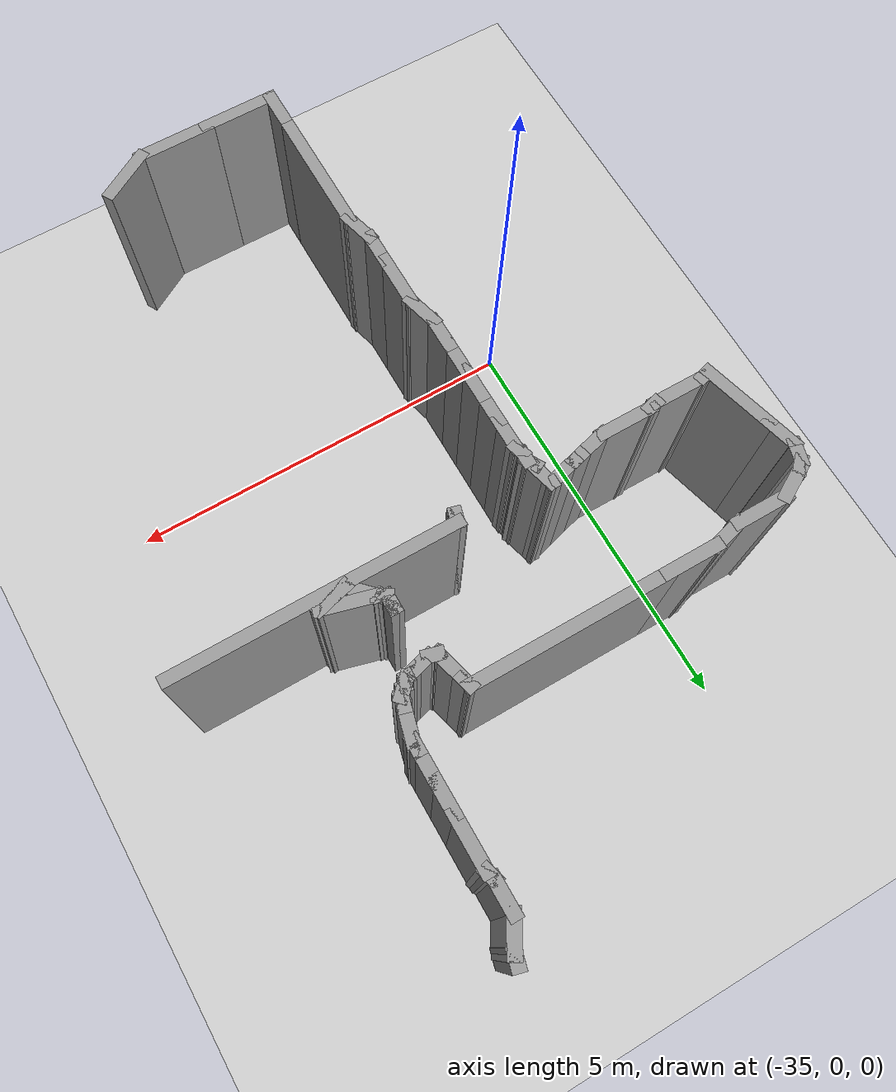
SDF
<sdf version="1.7">
 <world name="default">
  <model name="ground_plane">
   <static>1</static>
   <link name="link">
    <collision name="collision">
     <geometry><plane><normal>0 0 1</normal><size>100 100</size></plane></geometry>
     <surface>
      <contact><collide_bitmask>65535</collide_bitmask></contact>
      <friction><ode><mu>100</mu><mu2>50</mu2></ode></friction>
     </surface>
    </collision>
    <visual name="visual">
     <cast_shadows>0</cast_shadows>
     <geometry><plane><normal>0 0 1</normal><size>100 100</size></plane></geometry>
     <material>
      <script><uri>file://media/materials/scripts/gazebo.material</uri><name>Gazebo/Grey</name></script>
     </material>
    </visual>
   </link>
  </model>
  <model name="robovisor_env">
   <pose>-13 -0.201839 0 0 0 3.14</pose>
   <link name="Wall_190">
    <collision name="Wall_190_Collision">
     <geometry><box><size>0.75 0.15 2.5</size></box></geometry>
     <pose>0 0 1.25 0 -0 0</pose>
    </collision>
    <visual name="Wall_190_Visual">
     <pose>0 0 1.25 0 -0 0</pose>
     <geometry><box><size>0.75 0.15 2.5</size></box></geometry>
     <material>
      <script><uri>file://media/materials/scripts/gazebo.material</uri><name>Gazebo/Grey</name></script>
      <ambient>1 1 1 1</ambient>
     </material>
     <meta><layer>0</layer></meta>
    </visual>
    <pose>18.8171 3.00338 0 0 -0 0.523599</pose>
   </link>
   <link name="Wall_191">
    <collision name="Wall_191_Collision">
     <geometry><box><size>1 0.15 2.5</size></box></geometry>
     <pose>0 0 1.25 0 -0 0</pose>
    </collision>
    <visual name="Wall_191_Visual">
     <pose>0 0 1.25 0 -0 0</pose>
     <geometry><box><size>1 0.15 2.5</size></box></geometry>
     <material>
      <script><uri>file://media/materials/scripts/gazebo.material</uri><name>Gazebo/Grey</name></script>
      <ambient>1 1 1 1</ambient>
     </material>
     <meta><layer>0</layer></meta>
    </visual>
    <pose>19.5019 3.15338 0 0 -0 0</pose>
   </link>
   <link name="Wall_192">
    <collision name="Wall_192_Collision">
     <geometry><box><size>1 0.15 2.5</size></box></geometry>
     <pose>0 0 1.25 0 -0 0</pose>
    </collision>
    <visual name="Wall_192_Visual">
     <pose>0 0 1.25 0 -0 0</pose>
     <geometry><box><size>1 0.15 2.5</size></box></geometry>
     <material>
      <script><uri>file://media/materials/scripts/gazebo.material</uri><name>Gazebo/Grey</name></script>
      <ambient>1 1 1 1</ambient>
     </material>
     <meta><layer>0</layer></meta>
    </visual>
    <pose>20.3519 3.15338 0 0 -0 0</pose>
   </link>
   <link name="Wall_193">
    <collision name="Wall_193_Collision">
     <geometry><box><size>0.5 0.15 2.5</size></box></geometry>
     <pose>0 0 1.25 0 -0 0</pose>
    </collision>
    <visual name="Wall_193_Visual">
     <pose>0 0 1.25 0 -0 0</pose>
     <geometry><box><size>0.5 0.15 2.5</size></box></geometry>
     <material>
      <script><uri>file://media/materials/scripts/gazebo.material</uri><name>Gazebo/Grey</name></script>
      <ambient>1 1 1 1</ambient>
     </material>
     <meta><layer>0</layer></meta>
    </visual>
    <pose>20.7769 2.97838 0 0 -0 -1.5708</pose>
   </link>
   <link name="Wall_194">
    <collision name="Wall_194_Collision">
     <geometry><box><size>1.75 0.15 2.5</size></box></geometry>
     <pose>0 0 1.25 0 -0 0</pose>
    </collision>
    <visual name="Wall_194_Visual">
     <pose>0 0 1.25 0 -0 0</pose>
     <geometry><box><size>1.75 0.15 2.5</size></box></geometry>
     <material>
      <script><uri>file://media/materials/scripts/gazebo.material</uri><name>Gazebo/Grey</name></script>
      <ambient>1 1 1 1</ambient>
     </material>
     <meta><layer>0</layer></meta>
    </visual>
    <pose>20.7769 2.00338 0 0 -0 -1.5708</pose>
   </link>
   <link name="Wall_195">
    <collision name="Wall_195_Collision">
     <geometry><box><size>0.5 0.15 2.5</size></box></geometry>
     <pose>0 0 1.25 0 -0 0</pose>
    </collision>
    <visual name="Wall_195_Visual">
     <pose>0 0 1.25 0 -0 0</pose>
     <geometry><box><size>0.5 0.15 2.5</size></box></geometry>
     <material>
      <script><uri>file://media/materials/scripts/gazebo.material</uri><name>Gazebo/Grey</name></script>
      <ambient>1 1 1 1</ambient>
     </material>
     <meta><layer>0</layer></meta>
    </visual>
    <pose>20.8222 1.03435 0 0 -0 -1.309</pose>
   </link>
   <link name="Wall_196">
    <collision name="Wall_196_Collision">
     <geometry><box><size>0.5 0.15 2.5</size></box></geometry>
     <pose>0 0 1.25 0 -0 0</pose>
    </collision>
    <visual name="Wall_196_Visual">
     <pose>0 0 1.25 0 -0 0</pose>
     <geometry><box><size>0.5 0.15 2.5</size></box></geometry>
     <material>
      <script><uri>file://media/materials/scripts/gazebo.material</uri><name>Gazebo/Grey</name></script>
      <ambient>1 1 1 1</ambient>
     </material>
     <meta><layer>0</layer></meta>
    </visual>
    <pose>20.8675 0.69031 0 0 -0 -1.5708</pose>
   </link>
   <link name="Wall_197">
    <collision name="Wall_197_Collision">
     <geometry><box><size>0.75 0.15 2.5</size></box></geometry>
     <pose>0 0 1.25 0 -0 0</pose>
    </collision>
    <visual name="Wall_197_Visual">
     <pose>0 0 1.25 0 -0 0</pose>
     <geometry><box><size>0.75 0.15 2.5</size></box></geometry>
     <material>
      <script><uri>file://media/materials/scripts/gazebo.material</uri><name>Gazebo/Grey</name></script>
      <ambient>1 1 1 1</ambient>
     </material>
     <meta><layer>0</layer></meta>
    </visual>
    <pose>20.8675 0.21531 0 0 -0 -1.5708</pose>
   </link>
   <link name="Wall_198">
    <collision name="Wall_198_Collision">
     <geometry><box><size>0.5 0.15 2.5</size></box></geometry>
     <pose>0 0 1.25 0 -0 0</pose>
    </collision>
    <visual name="Wall_198_Visual">
     <pose>0 0 1.25 0 -0 0</pose>
     <geometry><box><size>0.5 0.15 2.5</size></box></geometry>
     <material>
      <script><uri>file://media/materials/scripts/gazebo.material</uri><name>Gazebo/Grey</name></script>
      <ambient>1 1 1 1</ambient>
     </material>
     <meta><layer>0</layer></meta>
    </visual>
    <pose>20.9127 -0.253727 0 0 -0 -1.309</pose>
   </link>
   <link name="Wall_199">
    <collision name="Wall_199_Collision">
     <geometry><box><size>0.5 0.15 2.5</size></box></geometry>
     <pose>0 0 1.25 0 -0 0</pose>
    </collision>
    <visual name="Wall_199_Visual">
     <pose>0 0 1.25 0 -0 0</pose>
     <geometry><box><size>0.5 0.15 2.5</size></box></geometry>
     <material>
      <script><uri>file://media/materials/scripts/gazebo.material</uri><name>Gazebo/Grey</name></script>
      <ambient>1 1 1 1</ambient>
     </material>
     <meta><layer>0</layer></meta>
    </visual>
    <pose>20.958 -0.597764 0 0 -0 -1.5708</pose>
   </link>
   <link name="Wall_200">
    <collision name="Wall_200_Collision">
     <geometry><box><size>0.5 0.15 2.5</size></box></geometry>
     <pose>0 0 1.25 0 -0 0</pose>
    </collision>
    <visual name="Wall_200_Visual">
     <pose>0 0 1.25 0 -0 0</pose>
     <geometry><box><size>0.5 0.15 2.5</size></box></geometry>
     <material>
      <script><uri>file://media/materials/scripts/gazebo.material</uri><name>Gazebo/Grey</name></script>
      <ambient>1 1 1 1</ambient>
     </material>
     <meta><layer>0</layer></meta>
    </visual>
    <pose>20.958 -0.947764 0 0 -0 -1.5708</pose>
   </link>
   <link name="Wall_201">
    <collision name="Wall_201_Collision">
     <geometry><box><size>0.5 0.15 2.5</size></box></geometry>
     <pose>0 0 1.25 0 -0 0</pose>
    </collision>
    <visual name="Wall_201_Visual">
     <pose>0 0 1.25 0 -0 0</pose>
     <geometry><box><size>0.5 0.15 2.5</size></box></geometry>
     <material>
      <script><uri>file://media/materials/scripts/gazebo.material</uri><name>Gazebo/Grey</name></script>
      <ambient>1 1 1 1</ambient>
     </material>
     <meta><layer>0</layer></meta>
    </visual>
    <pose>20.958 -1.29776 0 0 -0 -1.5708</pose>
   </link>
   <link name="Wall_202">
    <collision name="Wall_202_Collision">
     <geometry><box><size>0.5 0.15 2.5</size></box></geometry>
     <pose>0 0 1.25 0 -0 0</pose>
    </collision>
    <visual name="Wall_202_Visual">
     <pose>0 0 1.25 0 -0 0</pose>
     <geometry><box><size>0.5 0.15 2.5</size></box></geometry>
     <material>
      <script><uri>file://media/materials/scripts/gazebo.material</uri><name>Gazebo/Grey</name></script>
      <ambient>1 1 1 1</ambient>
     </material>
     <meta><layer>0</layer></meta>
    </visual>
    <pose>20.958 -1.64776 0 0 -0 -1.5708</pose>
   </link>
   <link name="Wall_203">
    <collision name="Wall_203_Collision">
     <geometry><box><size>0.5 0.15 2.5</size></box></geometry>
     <pose>0 0 1.25 0 -0 0</pose>
    </collision>
    <visual name="Wall_203_Visual">
     <pose>0 0 1.25 0 -0 0</pose>
     <geometry><box><size>0.5 0.15 2.5</size></box></geometry>
     <material>
      <script><uri>file://media/materials/scripts/gazebo.material</uri><name>Gazebo/Grey</name></script>
      <ambient>1 1 1 1</ambient>
     </material>
     <meta><layer>0</layer></meta>
    </visual>
    <pose>20.958 -1.99776 0 0 -0 -1.5708</pose>
   </link>
   <link name="Wall_204">
    <collision name="Wall_204_Collision">
     <geometry><box><size>0.25 0.15 2.5</size></box></geometry>
     <pose>0 0 1.25 0 -0 0</pose>
    </collision>
    <visual name="Wall_204_Visual">
     <pose>0 0 1.25 0 -0 0</pose>
     <geometry><box><size>0.25 0.15 2.5</size></box></geometry>
     <material>
      <script><uri>file://media/materials/scripts/gazebo.material</uri><name>Gazebo/Grey</name></script>
      <ambient>1 1 1 1</ambient>
     </material>
     <meta><layer>0</layer></meta>
    </visual>
    <pose>20.971 -2.22106 0 0 -0 -1.309</pose>
   </link>
   <link name="Wall_205">
    <collision name="Wall_205_Collision">
     <geometry><box><size>0.25 0.15 2.5</size></box></geometry>
     <pose>0 0 1.25 0 -0 0</pose>
    </collision>
    <visual name="Wall_205_Visual">
     <pose>0 0 1.25 0 -0 0</pose>
     <geometry><box><size>0.25 0.15 2.5</size></box></geometry>
     <material>
      <script><uri>file://media/materials/scripts/gazebo.material</uri><name>Gazebo/Grey</name></script>
      <ambient>1 1 1 1</ambient>
     </material>
     <meta><layer>0</layer></meta>
    </visual>
    <pose>20.9839 -2.31936 0 0 -0 -1.5708</pose>
   </link>
   <link name="Wall_206">
    <collision name="Wall_206_Collision">
     <geometry><box><size>0.25 0.15 2.5</size></box></geometry>
     <pose>0 0 1.25 0 -0 0</pose>
    </collision>
    <visual name="Wall_206_Visual">
     <pose>0 0 1.25 0 -0 0</pose>
     <geometry><box><size>0.25 0.15 2.5</size></box></geometry>
     <material>
      <script><uri>file://media/materials/scripts/gazebo.material</uri><name>Gazebo/Grey</name></script>
      <ambient>1 1 1 1</ambient>
     </material>
     <meta><layer>0</layer></meta>
    </visual>
    <pose>21.0089 -2.41266 0 0 -0 -1.0472</pose>
   </link>
   <link name="Wall_207">
    <collision name="Wall_207_Collision">
     <geometry><box><size>0.25 0.15 2.5</size></box></geometry>
     <pose>0 0 1.25 0 -0 0</pose>
    </collision>
    <visual name="Wall_207_Visual">
     <pose>0 0 1.25 0 -0 0</pose>
     <geometry><box><size>0.25 0.15 2.5</size></box></geometry>
     <material>
      <script><uri>file://media/materials/scripts/gazebo.material</uri><name>Gazebo/Grey</name></script>
      <ambient>1 1 1 1</ambient>
     </material>
     <meta><layer>0</layer></meta>
    </visual>
    <pose>21.0089 -2.41266 0 0 -0 2.0944</pose>
   </link>
   <link name="Wall_208">
    <collision name="Wall_208_Collision">
     <geometry><box><size>0.5 0.15 2.5</size></box></geometry>
     <pose>0 0 1.25 0 -0 0</pose>
    </collision>
    <visual name="Wall_208_Visual">
     <pose>0 0 1.25 0 -0 0</pose>
     <geometry><box><size>0.5 0.15 2.5</size></box></geometry>
     <material>
      <script><uri>file://media/materials/scripts/gazebo.material</uri><name>Gazebo/Grey</name></script>
      <ambient>1 1 1 1</ambient>
     </material>
     <meta><layer>0</layer></meta>
    </visual>
    <pose>21.0292 -2.53839 0 0 -0 -1.309</pose>
   </link>
   <link name="Wall_209">
    <collision name="Wall_209_Collision">
     <geometry><box><size>0.15 0.15 2.5</size></box></geometry>
     <pose>0 0 1.25 0 -0 0</pose>
    </collision>
    <visual name="Wall_209_Visual">
     <pose>0 0 1.25 0 -0 0</pose>
     <geometry><box><size>0.15 0.15 2.5</size></box></geometry>
     <material>
      <script><uri>file://media/materials/scripts/gazebo.material</uri><name>Gazebo/Grey</name></script>
      <ambient>1 1 1 1</ambient>
     </material>
     <meta><layer>0</layer></meta>
    </visual>
    <pose>21.0745 -2.70743 0 0 -0 0</pose>
   </link>
   <link name="Wall_210">
    <collision name="Wall_210_Collision">
     <geometry><box><size>0.5 0.15 2.5</size></box></geometry>
     <pose>0 0 1.25 0 -0 0</pose>
    </collision>
    <visual name="Wall_210_Visual">
     <pose>0 0 1.25 0 -0 0</pose>
     <geometry><box><size>0.5 0.15 2.5</size></box></geometry>
     <material>
      <script><uri>file://media/materials/scripts/gazebo.material</uri><name>Gazebo/Grey</name></script>
      <ambient>1 1 1 1</ambient>
     </material>
     <meta><layer>0</layer></meta>
    </visual>
    <pose>21.2435 -2.66214 0 0 -0 0.261799</pose>
   </link>
   <link name="Wall_211">
    <collision name="Wall_211_Collision">
     <geometry><box><size>0.25 0.15 2.5</size></box></geometry>
     <pose>0 0 1.25 0 -0 0</pose>
    </collision>
    <visual name="Wall_211_Visual">
     <pose>0 0 1.25 0 -0 0</pose>
     <geometry><box><size>0.25 0.15 2.5</size></box></geometry>
     <material>
      <script><uri>file://media/materials/scripts/gazebo.material</uri><name>Gazebo/Grey</name></script>
      <ambient>1 1 1 1</ambient>
     </material>
     <meta><layer>0</layer></meta>
    </visual>
    <pose>21.4609 -2.6039 0 0 -0 0.261799</pose>
   </link>
   <link name="Wall_212">
    <collision name="Wall_212_Collision">
     <geometry><box><size>0.5 0.15 2.5</size></box></geometry>
     <pose>0 0 1.25 0 -0 0</pose>
    </collision>
    <visual name="Wall_212_Visual">
     <pose>0 0 1.25 0 -0 0</pose>
     <geometry><box><size>0.5 0.15 2.5</size></box></geometry>
     <material>
      <script><uri>file://media/materials/scripts/gazebo.material</uri><name>Gazebo/Grey</name></script>
      <ambient>1 1 1 1</ambient>
     </material>
     <meta><layer>0</layer></meta>
    </visual>
    <pose>21.6782 -2.54567 0 0 -0 0.261799</pose>
   </link>
   <link name="Wall_213">
    <collision name="Wall_213_Collision">
     <geometry><box><size>0.75 0.15 2.5</size></box></geometry>
     <pose>0 0 1.25 0 -0 0</pose>
    </collision>
    <visual name="Wall_213_Visual">
     <pose>0 0 1.25 0 -0 0</pose>
     <geometry><box><size>0.75 0.15 2.5</size></box></geometry>
     <material>
      <script><uri>file://media/materials/scripts/gazebo.material</uri><name>Gazebo/Grey</name></script>
      <ambient>1 1 1 1</ambient>
     </material>
     <meta><layer>0</layer></meta>
    </visual>
    <pose>22.1473 -2.50038 0 0 -0 0</pose>
   </link>
   <link name="Wall_214">
    <collision name="Wall_214_Collision">
     <geometry><box><size>0.25 0.15 2.5</size></box></geometry>
     <pose>0 0 1.25 0 -0 0</pose>
    </collision>
    <visual name="Wall_214_Visual">
     <pose>0 0 1.25 0 -0 0</pose>
     <geometry><box><size>0.25 0.15 2.5</size></box></geometry>
     <material>
      <script><uri>file://media/materials/scripts/gazebo.material</uri><name>Gazebo/Grey</name></script>
      <ambient>1 1 1 1</ambient>
     </material>
     <meta><layer>0</layer></meta>
    </visual>
    <pose>22.4956 -2.48743 0 0 -0 0.261799</pose>
   </link>
   <link name="Wall_215">
    <collision name="Wall_215_Collision">
     <geometry><box><size>0.75 0.15 2.5</size></box></geometry>
     <pose>0 0 1.25 0 -0 0</pose>
    </collision>
    <visual name="Wall_215_Visual">
     <pose>0 0 1.25 0 -0 0</pose>
     <geometry><box><size>0.75 0.15 2.5</size></box></geometry>
     <material>
      <script><uri>file://media/materials/scripts/gazebo.material</uri><name>Gazebo/Grey</name></script>
      <ambient>1 1 1 1</ambient>
     </material>
     <meta><layer>0</layer></meta>
    </visual>
    <pose>22.8438 -2.47449 0 0 -0 0</pose>
   </link>
   <link name="Wall_216">
    <collision name="Wall_216_Collision">
     <geometry><box><size>0.25 0.15 2.5</size></box></geometry>
     <pose>0 0 1.25 0 -0 0</pose>
    </collision>
    <visual name="Wall_216_Visual">
     <pose>0 0 1.25 0 -0 0</pose>
     <geometry><box><size>0.25 0.15 2.5</size></box></geometry>
     <material>
      <script><uri>file://media/materials/scripts/gazebo.material</uri><name>Gazebo/Grey</name></script>
      <ambient>1 1 1 1</ambient>
     </material>
     <meta><layer>0</layer></meta>
    </visual>
    <pose>23.1921 -2.46155 0 0 -0 0.261799</pose>
   </link>
   <link name="Wall_217">
    <collision name="Wall_217_Collision">
     <geometry><box><size>1 0.15 2.5</size></box></geometry>
     <pose>0 0 1.25 0 -0 0</pose>
    </collision>
    <visual name="Wall_217_Visual">
     <pose>0 0 1.25 0 -0 0</pose>
     <geometry><box><size>1 0.15 2.5</size></box></geometry>
     <material>
      <script><uri>file://media/materials/scripts/gazebo.material</uri><name>Gazebo/Grey</name></script>
      <ambient>1 1 1 1</ambient>
     </material>
     <meta><layer>0</layer></meta>
    </visual>
    <pose>23.3504 -2.85913 0 0 -0 -1.309</pose>
   </link>
   <link name="Wall_218">
    <collision name="Wall_218_Collision">
     <geometry><box><size>0.5 0.15 2.5</size></box></geometry>
     <pose>0 0 1.25 0 -0 0</pose>
    </collision>
    <visual name="Wall_218_Visual">
     <pose>0 0 1.25 0 -0 0</pose>
     <geometry><box><size>0.5 0.15 2.5</size></box></geometry>
     <material>
      <script><uri>file://media/materials/scripts/gazebo.material</uri><name>Gazebo/Grey</name></script>
      <ambient>1 1 1 1</ambient>
     </material>
     <meta><layer>0</layer></meta>
    </visual>
    <pose>23.5057 -3.43868 0 0 -0 -1.309</pose>
   </link>
   <link name="Wall_219">
    <collision name="Wall_219_Collision">
     <geometry><box><size>0.25 0.15 2.5</size></box></geometry>
     <pose>0 0 1.25 0 -0 0</pose>
    </collision>
    <visual name="Wall_219_Visual">
     <pose>0 0 1.25 0 -0 0</pose>
     <geometry><box><size>0.25 0.15 2.5</size></box></geometry>
     <material>
      <script><uri>file://media/materials/scripts/gazebo.material</uri><name>Gazebo/Grey</name></script>
      <ambient>1 1 1 1</ambient>
     </material>
     <meta><layer>0</layer></meta>
    </visual>
    <pose>23.5381 -3.65602 0 0 -0 -1.8326</pose>
   </link>
   <link name="Wall_220">
    <collision name="Wall_220_Collision">
     <geometry><box><size>0.25 0.15 2.5</size></box></geometry>
     <pose>0 0 1.25 0 -0 0</pose>
    </collision>
    <visual name="Wall_220_Visual">
     <pose>0 0 1.25 0 -0 0</pose>
     <geometry><box><size>0.25 0.15 2.5</size></box></geometry>
     <material>
      <script><uri>file://media/materials/scripts/gazebo.material</uri><name>Gazebo/Grey</name></script>
      <ambient>1 1 1 1</ambient>
     </material>
     <meta><layer>0</layer></meta>
    </visual>
    <pose>23.5122 -3.75261 0 0 -0 -1.8326</pose>
   </link>
   <link name="Wall_221">
    <collision name="Wall_221_Collision">
     <geometry><box><size>0.25 0.15 2.5</size></box></geometry>
     <pose>0 0 1.25 0 -0 0</pose>
    </collision>
    <visual name="Wall_221_Visual">
     <pose>0 0 1.25 0 -0 0</pose>
     <geometry><box><size>0.25 0.15 2.5</size></box></geometry>
     <material>
      <script><uri>file://media/materials/scripts/gazebo.material</uri><name>Gazebo/Grey</name></script>
      <ambient>1 1 1 1</ambient>
     </material>
     <meta><layer>0</layer></meta>
    </visual>
    <pose>23.4639 -3.83626 0 0 -0 -2.35619</pose>
   </link>
   <link name="Wall_222">
    <collision name="Wall_222_Collision">
     <geometry><box><size>0.5 0.15 2.5</size></box></geometry>
     <pose>0 0 1.25 0 -0 0</pose>
    </collision>
    <visual name="Wall_222_Visual">
     <pose>0 0 1.25 0 -0 0</pose>
     <geometry><box><size>0.5 0.15 2.5</size></box></geometry>
     <material>
      <script><uri>file://media/materials/scripts/gazebo.material</uri><name>Gazebo/Grey</name></script>
      <ambient>1 1 1 1</ambient>
     </material>
     <meta><layer>0</layer></meta>
    </visual>
    <pose>23.277 -3.95912 0 0 -0 -2.61799</pose>
   </link>
   <link name="Wall_223">
    <collision name="Wall_223_Collision">
     <geometry><box><size>0.75 0.15 2.5</size></box></geometry>
     <pose>0 0 1.25 0 -0 0</pose>
    </collision>
    <visual name="Wall_223_Visual">
     <pose>0 0 1.25 0 -0 0</pose>
     <geometry><box><size>0.75 0.15 2.5</size></box></geometry>
     <material>
      <script><uri>file://media/materials/scripts/gazebo.material</uri><name>Gazebo/Grey</name></script>
      <ambient>1 1 1 1</ambient>
     </material>
     <meta><layer>0</layer></meta>
    </visual>
    <pose>22.8254 -4.04662 0 0 -0 3.14159</pose>
   </link>
   <link name="Wall_224">
    <collision name="Wall_224_Collision">
     <geometry><box><size>0.5 0.15 2.5</size></box></geometry>
     <pose>0 0 1.25 0 -0 0</pose>
    </collision>
    <visual name="Wall_224_Visual">
     <pose>0 0 1.25 0 -0 0</pose>
     <geometry><box><size>0.5 0.15 2.5</size></box></geometry>
     <material>
      <script><uri>file://media/materials/scripts/gazebo.material</uri><name>Gazebo/Grey</name></script>
      <ambient>1 1 1 1</ambient>
     </material>
     <meta><layer>0</layer></meta>
    </visual>
    <pose>22.3564 -4.09191 0 0 -0 -2.87979</pose>
   </link>
   <link name="Wall_225">
    <collision name="Wall_225_Collision">
     <geometry><box><size>0.75 0.15 2.5</size></box></geometry>
     <pose>0 0 1.25 0 -0 0</pose>
    </collision>
    <visual name="Wall_225_Visual">
     <pose>0 0 1.25 0 -0 0</pose>
     <geometry><box><size>0.75 0.15 2.5</size></box></geometry>
     <material>
      <script><uri>file://media/materials/scripts/gazebo.material</uri><name>Gazebo/Grey</name></script>
      <ambient>1 1 1 1</ambient>
     </material>
     <meta><layer>0</layer></meta>
    </visual>
    <pose>21.8874 -4.1372 0 0 -0 3.14159</pose>
   </link>
   <link name="Wall_226">
    <collision name="Wall_226_Collision">
     <geometry><box><size>2.5 0.15 2.5</size></box></geometry>
     <pose>0 0 1.25 0 -0 0</pose>
    </collision>
    <visual name="Wall_226_Visual">
     <pose>0 0 1.25 0 -0 0</pose>
     <geometry><box><size>2.5 0.15 2.5</size></box></geometry>
     <material>
      <script><uri>file://media/materials/scripts/gazebo.material</uri><name>Gazebo/Grey</name></script>
      <ambient>1 1 1 1</ambient>
     </material>
     <meta><layer>0</layer></meta>
    </visual>
    <pose>20.4124 -4.1372 0 0 -0 3.14159</pose>
   </link>
   <link name="Wall_227">
    <collision name="Wall_227_Collision">
     <geometry><box><size>0.25 0.15 2.5</size></box></geometry>
     <pose>0 0 1.25 0 -0 0</pose>
    </collision>
    <visual name="Wall_227_Visual">
     <pose>0 0 1.25 0 -0 0</pose>
     <geometry><box><size>0.25 0.15 2.5</size></box></geometry>
     <material>
      <script><uri>file://media/materials/scripts/gazebo.material</uri><name>Gazebo/Grey</name></script>
      <ambient>1 1 1 1</ambient>
     </material>
     <meta><layer>0</layer></meta>
    </visual>
    <pose>19.2244 -4.08891 0 0 -0 1.8326</pose>
   </link>
   <link name="Wall_228">
    <collision name="Wall_228_Collision">
     <geometry><box><size>0.5 0.15 2.5</size></box></geometry>
     <pose>0 0 1.25 0 -0 0</pose>
    </collision>
    <visual name="Wall_228_Visual">
     <pose>0 0 1.25 0 -0 0</pose>
     <geometry><box><size>0.5 0.15 2.5</size></box></geometry>
     <material>
      <script><uri>file://media/materials/scripts/gazebo.material</uri><name>Gazebo/Grey</name></script>
      <ambient>1 1 1 1</ambient>
     </material>
     <meta><layer>0</layer></meta>
    </visual>
    <pose>19.1662 -3.87157 0 0 -0 1.8326</pose>
   </link>
   <link name="Wall_229">
    <collision name="Wall_229_Collision">
     <geometry><box><size>0.15 0.15 2.5</size></box></geometry>
     <pose>0 0 1.25 0 -0 0</pose>
    </collision>
    <visual name="Wall_229_Visual">
     <pose>0 0 1.25 0 -0 0</pose>
     <geometry><box><size>0.15 0.15 2.5</size></box></geometry>
     <material>
      <script><uri>file://media/materials/scripts/gazebo.material</uri><name>Gazebo/Grey</name></script>
      <ambient>1 1 1 1</ambient>
     </material>
     <meta><layer>0</layer></meta>
    </visual>
    <pose>19.1209 -3.70254 0 0 -0 0</pose>
   </link>
   <link name="Wall_230">
    <collision name="Wall_230_Collision">
     <geometry><box><size>0.15 0.15 2.5</size></box></geometry>
     <pose>0 0 1.25 0 -0 0</pose>
    </collision>
    <visual name="Wall_230_Visual">
     <pose>0 0 1.25 0 -0 0</pose>
     <geometry><box><size>0.15 0.15 2.5</size></box></geometry>
     <material>
      <script><uri>file://media/materials/scripts/gazebo.material</uri><name>Gazebo/Grey</name></script>
      <ambient>1 1 1 1</ambient>
     </material>
     <meta><layer>0</layer></meta>
    </visual>
    <pose>19.1209 -3.70254 0 0 -0 0</pose>
   </link>
   <link name="Wall_231">
    <collision name="Wall_231_Collision">
     <geometry><box><size>0.15 0.15 2.5</size></box></geometry>
     <pose>0 0 1.25 0 -0 0</pose>
    </collision>
    <visual name="Wall_231_Visual">
     <pose>0 0 1.25 0 -0 0</pose>
     <geometry><box><size>0.15 0.15 2.5</size></box></geometry>
     <material>
      <script><uri>file://media/materials/scripts/gazebo.material</uri><name>Gazebo/Grey</name></script>
      <ambient>1 1 1 1</ambient>
     </material>
     <meta><layer>0</layer></meta>
    </visual>
    <pose>19.1209 -3.70254 0 0 -0 0</pose>
   </link>
   <link name="Wall_232">
    <collision name="Wall_232_Collision">
     <geometry><box><size>0.25 0.15 2.5</size></box></geometry>
     <pose>0 0 1.25 0 -0 0</pose>
    </collision>
    <visual name="Wall_232_Visual">
     <pose>0 0 1.25 0 -0 0</pose>
     <geometry><box><size>0.25 0.15 2.5</size></box></geometry>
     <material>
      <script><uri>file://media/materials/scripts/gazebo.material</uri><name>Gazebo/Grey</name></script>
      <ambient>1 1 1 1</ambient>
     </material>
     <meta><layer>0</layer></meta>
    </visual>
    <pose>19.0726 -3.6896 0 0 -0 2.87979</pose>
   </link>
   <link name="Wall_233">
    <collision name="Wall_233_Collision">
     <geometry><box><size>0.25 0.15 2.5</size></box></geometry>
     <pose>0 0 1.25 0 -0 0</pose>
    </collision>
    <visual name="Wall_233_Visual">
     <pose>0 0 1.25 0 -0 0</pose>
     <geometry><box><size>0.25 0.15 2.5</size></box></geometry>
     <material>
      <script><uri>file://media/materials/scripts/gazebo.material</uri><name>Gazebo/Grey</name></script>
      <ambient>1 1 1 1</ambient>
     </material>
     <meta><layer>0</layer></meta>
    </visual>
    <pose>18.976 -3.6896 0 0 -0 -2.87979</pose>
   </link>
   <link name="Wall_234">
    <collision name="Wall_234_Collision">
     <geometry><box><size>0.25 0.15 2.5</size></box></geometry>
     <pose>0 0 1.25 0 -0 0</pose>
    </collision>
    <visual name="Wall_234_Visual">
     <pose>0 0 1.25 0 -0 0</pose>
     <geometry><box><size>0.25 0.15 2.5</size></box></geometry>
     <material>
      <script><uri>file://media/materials/scripts/gazebo.material</uri><name>Gazebo/Grey</name></script>
      <ambient>1 1 1 1</ambient>
     </material>
     <meta><layer>0</layer></meta>
    </visual>
    <pose>18.8794 -3.71548 0 0 -0 -2.87979</pose>
   </link>
   <link name="Wall_235">
    <collision name="Wall_235_Collision">
     <geometry><box><size>0.25 0.15 2.5</size></box></geometry>
     <pose>0 0 1.25 0 -0 0</pose>
    </collision>
    <visual name="Wall_235_Visual">
     <pose>0 0 1.25 0 -0 0</pose>
     <geometry><box><size>0.25 0.15 2.5</size></box></geometry>
     <material>
      <script><uri>file://media/materials/scripts/gazebo.material</uri><name>Gazebo/Grey</name></script>
      <ambient>1 1 1 1</ambient>
     </material>
     <meta><layer>0</layer></meta>
    </visual>
    <pose>18.7828 -3.74136 0 0 -0 -2.87979</pose>
   </link>
   <link name="Wall_236">
    <collision name="Wall_236_Collision">
     <geometry><box><size>0.15 0.15 2.5</size></box></geometry>
     <pose>0 0 1.25 0 -0 0</pose>
    </collision>
    <visual name="Wall_236_Visual">
     <pose>0 0 1.25 0 -0 0</pose>
     <geometry><box><size>0.15 0.15 2.5</size></box></geometry>
     <material>
      <script><uri>file://media/materials/scripts/gazebo.material</uri><name>Gazebo/Grey</name></script>
      <ambient>1 1 1 1</ambient>
     </material>
     <meta><layer>0</layer></meta>
    </visual>
    <pose>18.7345 -3.7543 0 0 -0 0</pose>
   </link>
   <link name="Wall_237">
    <collision name="Wall_237_Collision">
     <geometry><box><size>0.15 0.15 2.5</size></box></geometry>
     <pose>0 0 1.25 0 -0 0</pose>
    </collision>
    <visual name="Wall_237_Visual">
     <pose>0 0 1.25 0 -0 0</pose>
     <geometry><box><size>0.15 0.15 2.5</size></box></geometry>
     <material>
      <script><uri>file://media/materials/scripts/gazebo.material</uri><name>Gazebo/Grey</name></script>
      <ambient>1 1 1 1</ambient>
     </material>
     <meta><layer>0</layer></meta>
    </visual>
    <pose>18.7345 -3.7543 0 0 -0 0</pose>
   </link>
   <link name="Wall_238">
    <collision name="Wall_238_Collision">
     <geometry><box><size>0.25 0.15 2.5</size></box></geometry>
     <pose>0 0 1.25 0 -0 0</pose>
    </collision>
    <visual name="Wall_238_Visual">
     <pose>0 0 1.25 0 -0 0</pose>
     <geometry><box><size>0.25 0.15 2.5</size></box></geometry>
     <material>
      <script><uri>file://media/materials/scripts/gazebo.material</uri><name>Gazebo/Grey</name></script>
      <ambient>1 1 1 1</ambient>
     </material>
     <meta><layer>0</layer></meta>
    </visual>
    <pose>18.6992 -3.78966 0 0 -0 -2.35619</pose>
   </link>
   <link name="Wall_239">
    <collision name="Wall_239_Collision">
     <geometry><box><size>0.15 0.15 2.5</size></box></geometry>
     <pose>0 0 1.25 0 -0 0</pose>
    </collision>
    <visual name="Wall_239_Visual">
     <pose>0 0 1.25 0 -0 0</pose>
     <geometry><box><size>0.15 0.15 2.5</size></box></geometry>
     <material>
      <script><uri>file://media/materials/scripts/gazebo.material</uri><name>Gazebo/Grey</name></script>
      <ambient>1 1 1 1</ambient>
     </material>
     <meta><layer>0</layer></meta>
    </visual>
    <pose>18.6638 -3.82501 0 0 -0 0</pose>
   </link>
   <link name="Wall_240">
    <collision name="Wall_240_Collision">
     <geometry><box><size>0.25 0.15 2.5</size></box></geometry>
     <pose>0 0 1.25 0 -0 0</pose>
    </collision>
    <visual name="Wall_240_Visual">
     <pose>0 0 1.25 0 -0 0</pose>
     <geometry><box><size>0.25 0.15 2.5</size></box></geometry>
     <material>
      <script><uri>file://media/materials/scripts/gazebo.material</uri><name>Gazebo/Grey</name></script>
      <ambient>1 1 1 1</ambient>
     </material>
     <meta><layer>0</layer></meta>
    </visual>
    <pose>18.6285 -3.86037 0 0 -0 -2.35619</pose>
   </link>
   <link name="Wall_241">
    <collision name="Wall_241_Collision">
     <geometry><box><size>0.15 0.15 2.5</size></box></geometry>
     <pose>0 0 1.25 0 -0 0</pose>
    </collision>
    <visual name="Wall_241_Visual">
     <pose>0 0 1.25 0 -0 0</pose>
     <geometry><box><size>0.15 0.15 2.5</size></box></geometry>
     <material>
      <script><uri>file://media/materials/scripts/gazebo.material</uri><name>Gazebo/Grey</name></script>
      <ambient>1 1 1 1</ambient>
     </material>
     <meta><layer>0</layer></meta>
    </visual>
    <pose>18.5931 -3.89572 0 0 -0 0</pose>
   </link>
   <link name="Wall_242">
    <collision name="Wall_242_Collision">
     <geometry><box><size>0.25 0.15 2.5</size></box></geometry>
     <pose>0 0 1.25 0 -0 0</pose>
    </collision>
    <visual name="Wall_242_Visual">
     <pose>0 0 1.25 0 -0 0</pose>
     <geometry><box><size>0.25 0.15 2.5</size></box></geometry>
     <material>
      <script><uri>file://media/materials/scripts/gazebo.material</uri><name>Gazebo/Grey</name></script>
      <ambient>1 1 1 1</ambient>
     </material>
     <meta><layer>0</layer></meta>
    </visual>
    <pose>18.5802 -3.94402 0 0 -0 -1.8326</pose>
   </link>
   <link name="Wall_243">
    <collision name="Wall_243_Collision">
     <geometry><box><size>0.5 0.15 2.5</size></box></geometry>
     <pose>0 0 1.25 0 -0 0</pose>
    </collision>
    <visual name="Wall_243_Visual">
     <pose>0 0 1.25 0 -0 0</pose>
     <geometry><box><size>0.5 0.15 2.5</size></box></geometry>
     <material>
      <script><uri>file://media/materials/scripts/gazebo.material</uri><name>Gazebo/Grey</name></script>
      <ambient>1 1 1 1</ambient>
     </material>
     <meta><layer>0</layer></meta>
    </visual>
    <pose>18.5219 -4.16135 0 0 -0 -1.8326</pose>
   </link>
   <link name="Wall_244">
    <collision name="Wall_244_Collision">
     <geometry><box><size>0.25 0.15 2.5</size></box></geometry>
     <pose>0 0 1.25 0 -0 0</pose>
    </collision>
    <visual name="Wall_244_Visual">
     <pose>0 0 1.25 0 -0 0</pose>
     <geometry><box><size>0.25 0.15 2.5</size></box></geometry>
     <material>
      <script><uri>file://media/materials/scripts/gazebo.material</uri><name>Gazebo/Grey</name></script>
      <ambient>1 1 1 1</ambient>
     </material>
     <meta><layer>0</layer></meta>
    </visual>
    <pose>18.4766 -4.38039 0 0 -0 -1.5708</pose>
   </link>
   <link name="Wall_245">
    <collision name="Wall_245_Collision">
     <geometry><box><size>0.5 0.15 2.5</size></box></geometry>
     <pose>0 0 1.25 0 -0 0</pose>
    </collision>
    <visual name="Wall_245_Visual">
     <pose>0 0 1.25 0 -0 0</pose>
     <geometry><box><size>0.5 0.15 2.5</size></box></geometry>
     <material>
      <script><uri>file://media/materials/scripts/gazebo.material</uri><name>Gazebo/Grey</name></script>
      <ambient>1 1 1 1</ambient>
     </material>
     <meta><layer>0</layer></meta>
    </visual>
    <pose>18.4766 -4.60539 0 0 -0 -1.5708</pose>
   </link>
   <link name="Wall_247">
    <collision name="Wall_247_Collision">
     <geometry><box><size>0.5 0.15 2.5</size></box></geometry>
     <pose>0 0 1.25 0 -0 0</pose>
    </collision>
    <visual name="Wall_247_Visual">
     <pose>0 0 1.25 0 -0 0</pose>
     <geometry><box><size>0.5 0.15 2.5</size></box></geometry>
     <material>
      <script><uri>file://media/materials/scripts/gazebo.material</uri><name>Gazebo/Grey</name></script>
      <ambient>1 1 1 1</ambient>
     </material>
     <meta><layer>0</layer></meta>
    </visual>
    <pose>18.4766 -4.95539 0 0 -0 -1.5708</pose>
   </link>
   <link name="Wall_248">
    <collision name="Wall_248_Collision">
     <geometry><box><size>0.75 0.15 2.5</size></box></geometry>
     <pose>0 0 1.25 0 -0 0</pose>
    </collision>
    <visual name="Wall_248_Visual">
     <pose>0 0 1.25 0 -0 0</pose>
     <geometry><box><size>0.75 0.15 2.5</size></box></geometry>
     <material>
      <script><uri>file://media/materials/scripts/gazebo.material</uri><name>Gazebo/Grey</name></script>
      <ambient>1 1 1 1</ambient>
     </material>
     <meta><layer>0</layer></meta>
    </visual>
    <pose>18.4766 -5.43039 0 0 -0 -1.5708</pose>
   </link>
   <link name="Wall_249">
    <collision name="Wall_249_Collision">
     <geometry><box><size>0.25 0.15 2.5</size></box></geometry>
     <pose>0 0 1.25 0 -0 0</pose>
    </collision>
    <visual name="Wall_249_Visual">
     <pose>0 0 1.25 0 -0 0</pose>
     <geometry><box><size>0.25 0.15 2.5</size></box></geometry>
     <material>
      <script><uri>file://media/materials/scripts/gazebo.material</uri><name>Gazebo/Grey</name></script>
      <ambient>1 1 1 1</ambient>
     </material>
     <meta><layer>0</layer></meta>
    </visual>
    <pose>18.4896 -5.77869 0 0 -0 -1.309</pose>
   </link>
   <link name="Wall_250">
    <collision name="Wall_250_Collision">
     <geometry><box><size>0.5 0.15 2.5</size></box></geometry>
     <pose>0 0 1.25 0 -0 0</pose>
    </collision>
    <visual name="Wall_250_Visual">
     <pose>0 0 1.25 0 -0 0</pose>
     <geometry><box><size>0.5 0.15 2.5</size></box></geometry>
     <material>
      <script><uri>file://media/materials/scripts/gazebo.material</uri><name>Gazebo/Grey</name></script>
      <ambient>1 1 1 1</ambient>
     </material>
     <meta><layer>0</layer></meta>
    </visual>
    <pose>18.5025 -6.00198 0 0 -0 -1.5708</pose>
   </link>
   <link name="Wall_251">
    <collision name="Wall_251_Collision">
     <geometry><box><size>0.5 0.15 2.5</size></box></geometry>
     <pose>0 0 1.25 0 -0 0</pose>
    </collision>
    <visual name="Wall_251_Visual">
     <pose>0 0 1.25 0 -0 0</pose>
     <geometry><box><size>0.5 0.15 2.5</size></box></geometry>
     <material>
      <script><uri>file://media/materials/scripts/gazebo.material</uri><name>Gazebo/Grey</name></script>
      <ambient>1 1 1 1</ambient>
     </material>
     <meta><layer>0</layer></meta>
    </visual>
    <pose>18.415 -6.32854 0 0 -0 -2.0944</pose>
   </link>
   <link name="Wall_252">
    <collision name="Wall_252_Collision">
     <geometry><box><size>0.25 0.15 2.5</size></box></geometry>
     <pose>0 0 1.25 0 -0 0</pose>
    </collision>
    <visual name="Wall_252_Visual">
     <pose>0 0 1.25 0 -0 0</pose>
     <geometry><box><size>0.25 0.15 2.5</size></box></geometry>
     <material>
      <script><uri>file://media/materials/scripts/gazebo.material</uri><name>Gazebo/Grey</name></script>
      <ambient>1 1 1 1</ambient>
     </material>
     <meta><layer>0</layer></meta>
    </visual>
    <pose>18.3146 -6.52839 0 0 -0 -1.8326</pose>
   </link>
   <link name="Wall_285">
    <collision name="Wall_285_Collision">
     <geometry><box><size>3.5 0.15 2.5</size></box></geometry>
     <pose>0 0 1.25 0 -0 0</pose>
    </collision>
    <visual name="Wall_285_Visual">
     <pose>0 0 1.25 0 -0 0</pose>
     <geometry><box><size>3.5 0.15 2.5</size></box></geometry>
     <material>
      <script><uri>file://media/materials/scripts/gazebo.material</uri><name>Gazebo/Grey</name></script>
      <ambient>1 1 1 1</ambient>
     </material>
     <meta><layer>0</layer></meta>
    </visual>
    <pose>18.3231 -2.59824 0 0 -0 0</pose>
   </link>
   <link name="Wall_286">
    <collision name="Wall_286_Collision">
     <geometry><box><size>0.25 0.15 2.5</size></box></geometry>
     <pose>0 0 1.25 0 -0 0</pose>
    </collision>
    <visual name="Wall_286_Visual">
     <pose>0 0 1.25 0 -0 0</pose>
     <geometry><box><size>0.25 0.15 2.5</size></box></geometry>
     <material>
      <script><uri>file://media/materials/scripts/gazebo.material</uri><name>Gazebo/Grey</name></script>
      <ambient>1 1 1 1</ambient>
     </material>
     <meta><layer>0</layer></meta>
    </visual>
    <pose>20.0111 -2.54995 0 0 -0 1.309</pose>
   </link>
   <link name="Wall_287">
    <collision name="Wall_287_Collision">
     <geometry><box><size>0.25 0.15 2.5</size></box></geometry>
     <pose>0 0 1.25 0 -0 0</pose>
    </collision>
    <visual name="Wall_287_Visual">
     <pose>0 0 1.25 0 -0 0</pose>
     <geometry><box><size>0.25 0.15 2.5</size></box></geometry>
     <material>
      <script><uri>file://media/materials/scripts/gazebo.material</uri><name>Gazebo/Grey</name></script>
      <ambient>1 1 1 1</ambient>
     </material>
     <meta><layer>0</layer></meta>
    </visual>
    <pose>20.0111 -2.54995 0 0 -0 -1.8326</pose>
   </link>
   <link name="Wall_289">
    <collision name="Wall_289_Collision">
     <geometry><box><size>0.3 0.15 2.5</size></box></geometry>
     <pose>0 0 1.25 0 -0 0</pose>
    </collision>
    <visual name="Wall_289_Visual">
     <pose>0 0 1.25 0 -0 0</pose>
     <geometry><box><size>0.3 0.15 2.5</size></box></geometry>
     <material>
      <script><uri>file://media/materials/scripts/gazebo.material</uri><name>Gazebo/Grey</name></script>
      <ambient>1 1 1 1</ambient>
     </material>
     <meta><layer>0</layer></meta>
    </visual>
    <pose>18.9733 -2.99953 0 0 -0 -1.5708</pose>
   </link>
   <link name="Wall_290">
    <collision name="Wall_290_Collision">
     <geometry><box><size>0.3 0.15 2.5</size></box></geometry>
     <pose>0 0 1.25 0 -0 0</pose>
    </collision>
    <visual name="Wall_290_Visual">
     <pose>0 0 1.25 0 -0 0</pose>
     <geometry><box><size>0.3 0.15 2.5</size></box></geometry>
     <material>
      <script><uri>file://media/materials/scripts/gazebo.material</uri><name>Gazebo/Grey</name></script>
      <ambient>1 1 1 1</ambient>
     </material>
     <meta><layer>0</layer></meta>
    </visual>
    <pose>18.9733 -2.99953 0 0 -0 1.5708</pose>
   </link>
   <link name="Wall_291">
    <collision name="Wall_291_Collision">
     <geometry><box><size>0.15 0.15 2.5</size></box></geometry>
     <pose>0 0 1.25 0 -0 0</pose>
    </collision>
    <visual name="Wall_291_Visual">
     <pose>0 0 1.25 0 -0 0</pose>
     <geometry><box><size>0.15 0.15 2.5</size></box></geometry>
     <material>
      <script><uri>file://media/materials/scripts/gazebo.material</uri><name>Gazebo/Grey</name></script>
      <ambient>1 1 1 1</ambient>
     </material>
     <meta><layer>0</layer></meta>
    </visual>
    <pose>18.9733 -2.92453 0 0 -0 0</pose>
   </link>
   <link name="Wall_292">
    <collision name="Wall_292_Collision">
     <geometry><box><size>0.25 0.15 2.5</size></box></geometry>
     <pose>0 0 1.25 0 -0 0</pose>
    </collision>
    <visual name="Wall_292_Visual">
     <pose>0 0 1.25 0 -0 0</pose>
     <geometry><box><size>0.25 0.15 2.5</size></box></geometry>
     <material>
      <script><uri>file://media/materials/scripts/gazebo.material</uri><name>Gazebo/Grey</name></script>
      <ambient>1 1 1 1</ambient>
     </material>
     <meta><layer>0</layer></meta>
    </visual>
    <pose>18.93 -2.89953 0 0 -0 2.61799</pose>
   </link>
   <link name="Wall_293">
    <collision name="Wall_293_Collision">
     <geometry><box><size>0.75 0.15 2.5</size></box></geometry>
     <pose>0 0 1.25 0 -0 0</pose>
    </collision>
    <visual name="Wall_293_Visual">
     <pose>0 0 1.25 0 -0 0</pose>
     <geometry><box><size>0.75 0.15 2.5</size></box></geometry>
     <material>
      <script><uri>file://media/materials/scripts/gazebo.material</uri><name>Gazebo/Grey</name></script>
      <ambient>1 1 1 1</ambient>
     </material>
     <meta><layer>0</layer></meta>
    </visual>
    <pose>18.5969 -2.79688 0 0 -0 2.87979</pose>
   </link>
   <link name="Wall_296">
    <collision name="Wall_296_Collision">
     <geometry><box><size>0.5 0.15 2.5</size></box></geometry>
     <pose>0 0 1.25 0 -0 0</pose>
    </collision>
    <visual name="Wall_296_Visual">
     <pose>0 0 1.25 0 -0 0</pose>
     <geometry><box><size>0.5 0.15 2.5</size></box></geometry>
     <material>
      <script><uri>file://media/materials/scripts/gazebo.material</uri><name>Gazebo/Grey</name></script>
      <ambient>1 1 1 1</ambient>
     </material>
     <meta><layer>0</layer></meta>
    </visual>
    <pose>18.4762 -2.67394 0 0 -0 0.261799</pose>
   </link>
   <link name="Wall_297">
    <collision name="Wall_297_Collision">
     <geometry><box><size>0.494629 0.15 2.5</size></box></geometry>
     <pose>0 0 1.25 0 -0 0</pose>
    </collision>
    <visual name="Wall_297_Visual">
     <pose>0 0 1.25 0 -0 0</pose>
     <geometry><box><size>0.494629 0.15 2.5</size></box></geometry>
     <material>
      <script><uri>file://media/materials/scripts/gazebo.material</uri><name>Gazebo/Grey</name></script>
      <ambient>1 1 1 1</ambient>
     </material>
     <meta><layer>0</layer></meta>
    </visual>
    <pose>18.766 -2.75159 0 0 -0 -0.794419</pose>
   </link>
   <link name="Wall_298">
    <collision name="Wall_298_Collision">
     <geometry><box><size>0.15 0.15 2.5</size></box></geometry>
     <pose>0 0 1.25 0 -0 0</pose>
    </collision>
    <visual name="Wall_298_Visual">
     <pose>0 0 1.25 0 -0 0</pose>
     <geometry><box><size>0.15 0.15 2.5</size></box></geometry>
     <material>
      <script><uri>file://media/materials/scripts/gazebo.material</uri><name>Gazebo/Grey</name></script>
      <ambient>1 1 1 1</ambient>
     </material>
     <meta><layer>0</layer></meta>
    </visual>
    <pose>18.8867 -2.87453 0 0 -0 0</pose>
   </link>
   <link name="Wall_299">
    <collision name="Wall_299_Collision">
     <geometry><box><size>0.15 0.15 2.5</size></box></geometry>
     <pose>0 0 1.25 0 -0 0</pose>
    </collision>
    <visual name="Wall_299_Visual">
     <pose>0 0 1.25 0 -0 0</pose>
     <geometry><box><size>0.15 0.15 2.5</size></box></geometry>
     <material>
      <script><uri>file://media/materials/scripts/gazebo.material</uri><name>Gazebo/Grey</name></script>
      <ambient>1 1 1 1</ambient>
     </material>
     <meta><layer>0</layer></meta>
    </visual>
    <pose>18.8867 -2.87453 0 0 -0 0</pose>
   </link>
   <static>1</static>
  </model>
 </world>
</sdf>
